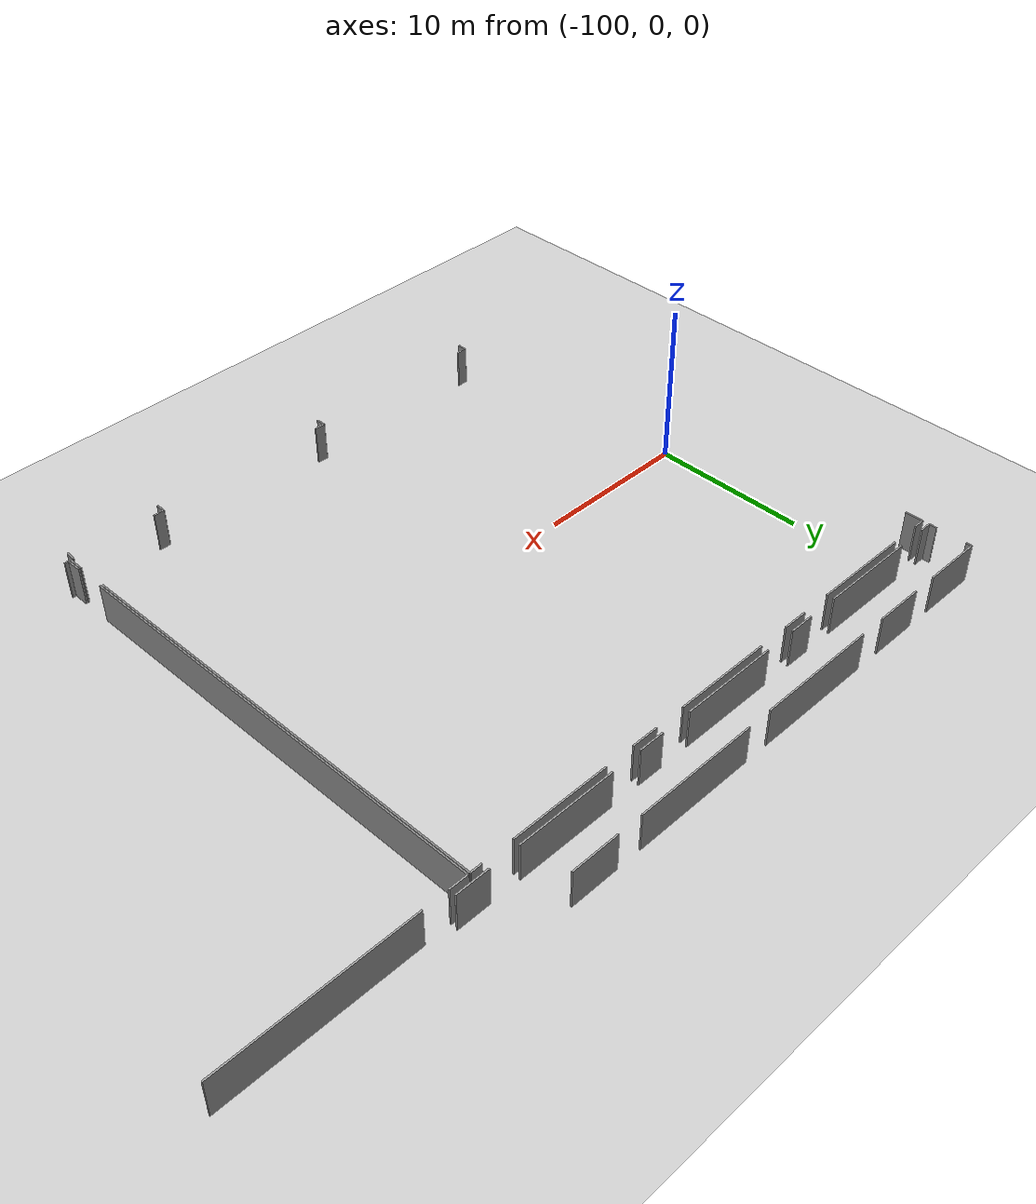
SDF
<sdf version="1.6">
 <world name="default">
  <model name="ground_plane">
   <static>1</static>
   <link name="link">
    <collision name="collision">
     <geometry><plane><normal>0 0 1</normal><size>100 100</size></plane></geometry>
     <surface><friction><ode><mu>100</mu><mu2>50</mu2></ode></friction></surface>
    </collision>
    <visual name="visual">
     <cast_shadows>0</cast_shadows>
     <geometry><plane><normal>0 0 1</normal><size>100 100</size></plane></geometry>
     <material>
      <script><uri>file://media/materials/scripts/gazebo.material</uri><name>Gazebo/Grey</name></script>
     </material>
    </visual>
   </link>
  </model>
  <model name="50010535_PLAN2">
   <static>1</static>
   <link name="Wall_1">
    <collision name="Wall_1_Collision">
     <geometry><box><size>2.14023875021 0.1 2.5</size></box></geometry>
     <pose>1.07011937511 0 1.25 0 0 0</pose>
    </collision>
    <visual name="Wall_1_Visual">
     <pose>1.07011937511 0 1.25 0 0 0</pose>
     <geometry><box><size>2.14023875021 0.1 2.5</size></box></geometry>
     <material>
      <script><uri>file://media/materials/scripts/gazebo.material</uri><name>Gazebo/Grey</name></script>
      <ambient>1 1 1 1</ambient>
     </material>
    </visual>
    <pose>37.1960127825 -12.5641569729 0 0 0 3.14159265359</pose>
   </link>
   <link name="Wall_2">
    <collision name="Wall_2_Collision">
     <geometry><box><size>6.37853154006 0.1 2.5</size></box></geometry>
     <pose>3.18926577003 0 1.25 0 0 0</pose>
    </collision>
    <visual name="Wall_2_Visual">
     <pose>3.18926577003 0 1.25 0 0 0</pose>
     <geometry><box><size>6.37853154006 0.1 2.5</size></box></geometry>
     <material>
      <script><uri>file://media/materials/scripts/gazebo.material</uri><name>Gazebo/Grey</name></script>
      <ambient>1 1 1 1</ambient>
     </material>
    </visual>
    <pose>33.1376403245 -12.5641569729 0 0 0 3.14159265359</pose>
   </link>
   <link name="Wall_3">
    <collision name="Wall_3_Collision">
     <geometry><box><size>1.67087031378 0.1 2.5</size></box></geometry>
     <pose>0.83543515689 0 1.25 0 0 0</pose>
    </collision>
    <visual name="Wall_3_Visual">
     <pose>0.83543515689 0 1.25 0 0 0</pose>
     <geometry><box><size>1.67087031378 0.1 2.5</size></box></geometry>
     <material>
      <script><uri>file://media/materials/scripts/gazebo.material</uri><name>Gazebo/Grey</name></script>
      <ambient>1 1 1 1</ambient>
     </material>
    </visual>
    <pose>24.7685495194 -12.5641569729 0 0 0 3.14159265359</pose>
   </link>
   <link name="Wall_4">
    <collision name="Wall_4_Collision">
     <geometry><box><size>6.34956131713 0.1 2.5</size></box></geometry>
     <pose>3.17478065856 0 1.25 0 0 0</pose>
    </collision>
    <visual name="Wall_4_Visual">
     <pose>3.17478065856 0 1.25 0 0 0</pose>
     <geometry><box><size>6.34956131713 0.1 2.5</size></box></geometry>
     <material>
      <script><uri>file://media/materials/scripts/gazebo.material</uri><name>Gazebo/Grey</name></script>
      <ambient>1 1 1 1</ambient>
     </material>
    </visual>
    <pose>21.0926348291 -12.5641569729 0 0 0 3.14159265359</pose>
   </link>
   <link name="Wall_5">
    <collision name="Wall_5_Collision">
     <geometry><box><size>1.65638520232 0.1 2.5</size></box></geometry>
     <pose>0.828192601158 0 1.25 0 0 0</pose>
    </collision>
    <visual name="Wall_5_Visual">
     <pose>0.828192601158 0 1.25 0 0 0</pose>
     <geometry><box><size>1.65638520232 0.1 2.5</size></box></geometry>
     <material>
      <script><uri>file://media/materials/scripts/gazebo.material</uri><name>Gazebo/Grey</name></script>
      <ambient>1 1 1 1</ambient>
     </material>
    </visual>
    <pose>12.7235440239 -12.5641569729 0 0 0 3.14159265359</pose>
   </link>
   <link name="Wall_6">
    <collision name="Wall_6_Collision">
     <geometry><box><size>6.36404642859 0.1 2.5</size></box></geometry>
     <pose>3.1820232143 0 1.25 0 0 0</pose>
    </collision>
    <visual name="Wall_6_Visual">
     <pose>3.1820232143 0 1.25 0 0 0</pose>
     <geometry><box><size>6.36404642859 0.1 2.5</size></box></geometry>
     <material>
      <script><uri>file://media/materials/scripts/gazebo.material</uri><name>Gazebo/Grey</name></script>
      <ambient>1 1 1 1</ambient>
     </material>
    </visual>
    <pose>9.09108466802 -12.5641569729 0 0 0 3.14159265359</pose>
   </link>
   <link name="Wall_7">
    <collision name="Wall_7_Collision">
     <geometry><box><size>0.75556374402 0.1 2.5</size></box></geometry>
     <pose>0.37778187201 0 1.25 0 0 0</pose>
    </collision>
    <visual name="Wall_7_Visual">
     <pose>0.37778187201 0 1.25 0 0 0</pose>
     <geometry><box><size>0.75556374402 0.1 2.5</size></box></geometry>
     <material>
      <script><uri>file://media/materials/scripts/gazebo.material</uri><name>Gazebo/Grey</name></script>
      <ambient>1 1 1 1</ambient>
     </material>
    </visual>
    <pose>0.765652497093 -12.5641569729 0 0 0 3.14159265359</pose>
   </link>
   <link name="Wall_8">
    <collision name="Wall_8_Collision">
     <geometry><box><size>0.503929404141 0.1 2.5</size></box></geometry>
     <pose>0.25196470207 0 1.25 0 0 0</pose>
    </collision>
    <visual name="Wall_8_Visual">
     <pose>0.25196470207 0 1.25 0 0 0</pose>
     <geometry><box><size>0.503929404141 0.1 2.5</size></box></geometry>
     <material>
      <script><uri>file://media/materials/scripts/gazebo.material</uri><name>Gazebo/Grey</name></script>
      <ambient>1 1 1 1</ambient>
     </material>
    </visual>
    <pose>0.0100887530733 -12.5641569729 0 0 0 1.57079632679</pose>
   </link>
   <link name="Wall_9">
    <collision name="Wall_9_Collision">
     <geometry><box><size>0.363144285687 0.1 2.5</size></box></geometry>
     <pose>0.181572142844 0 1.25 0 0 0</pose>
    </collision>
    <visual name="Wall_9_Visual">
     <pose>0.181572142844 0 1.25 0 0 0</pose>
     <geometry><box><size>0.363144285687 0.1 2.5</size></box></geometry>
     <material>
      <script><uri>file://media/materials/scripts/gazebo.material</uri><name>Gazebo/Grey</name></script>
      <ambient>1 1 1 1</ambient>
     </material>
    </visual>
    <pose>0.0100887530733 -10.1278628743 0 0 0 1.57079632679</pose>
   </link>
   <link name="Wall_10">
    <collision name="Wall_10_Collision">
     <geometry><box><size>3.84348455874 0.1 2.5</size></box></geometry>
     <pose>1.92174227937 0 1.25 0 0 0</pose>
    </collision>
    <visual name="Wall_10_Visual">
     <pose>1.92174227937 0 1.25 0 0 0</pose>
     <geometry><box><size>3.84348455874 0.1 2.5</size></box></geometry>
     <material>
      <script><uri>file://media/materials/scripts/gazebo.material</uri><name>Gazebo/Grey</name></script>
      <ambient>1 1 1 1</ambient>
     </material>
    </visual>
    <pose>0.0100887530733 -9.76471858859 0 0 0 0.0</pose>
   </link>
   <link name="Wall_11">
    <collision name="Wall_11_Collision">
     <geometry><box><size>3.16741104045 0.1 2.5</size></box></geometry>
     <pose>1.58370552023 0 1.25 0 0 0</pose>
    </collision>
    <visual name="Wall_11_Visual">
     <pose>1.58370552023 0 1.25 0 0 0</pose>
     <geometry><box><size>3.16741104045 0.1 2.5</size></box></geometry>
     <material>
      <script><uri>file://media/materials/scripts/gazebo.material</uri><name>Gazebo/Grey</name></script>
      <ambient>1 1 1 1</ambient>
     </material>
    </visual>
    <pose>5.44414020063 -9.76471858859 0 0 0 0.0</pose>
   </link>
   <link name="Wall_12">
    <collision name="Wall_12_Collision">
     <geometry><box><size>7.91573222874 0.1 2.5</size></box></geometry>
     <pose>3.95786611437 0 1.25 0 0 0</pose>
    </collision>
    <visual name="Wall_12_Visual">
     <pose>3.95786611437 0 1.25 0 0 0</pose>
     <geometry><box><size>7.91573222874 0.1 2.5</size></box></geometry>
     <material>
      <script><uri>file://media/materials/scripts/gazebo.material</uri><name>Gazebo/Grey</name></script>
      <ambient>1 1 1 1</ambient>
     </material>
    </visual>
    <pose>10.2885205492 -9.76471858859 0 0 0 0.0</pose>
   </link>
   <link name="Wall_13">
    <collision name="Wall_13_Collision">
     <geometry><box><size>8.03237549475 0.1 2.5</size></box></geometry>
     <pose>4.01618774737 0 1.25 0 0 0</pose>
    </collision>
    <visual name="Wall_13_Visual">
     <pose>4.01618774737 0 1.25 0 0 0</pose>
     <geometry><box><size>8.03237549475 0.1 2.5</size></box></geometry>
     <material>
      <script><uri>file://media/materials/scripts/gazebo.material</uri><name>Gazebo/Grey</name></script>
      <ambient>1 1 1 1</ambient>
     </material>
    </visual>
    <pose>19.8181991449 -9.76471858859 0 0 0 0.0</pose>
   </link>
   <link name="Wall_14">
    <collision name="Wall_14_Collision">
     <geometry><box><size>3.15724604995 0.1 2.5</size></box></geometry>
     <pose>1.57862302497 0 1.25 0 0 0</pose>
    </collision>
    <visual name="Wall_14_Visual">
     <pose>1.57862302497 0 1.25 0 0 0</pose>
     <geometry><box><size>3.15724604995 0.1 2.5</size></box></geometry>
     <material>
      <script><uri>file://media/materials/scripts/gazebo.material</uri><name>Gazebo/Grey</name></script>
      <ambient>1 1 1 1</ambient>
     </material>
    </visual>
    <pose>29.4645210066 -9.76471858859 0 0 0 0.0</pose>
   </link>
   <link name="Wall_81">
    <collision name="Wall_81_Collision">
     <geometry><box><size>0.275979492132 0.1 2.5</size></box></geometry>
     <pose>0.137989746066 0 1.25 0 0 0</pose>
    </collision>
    <visual name="Wall_81_Visual">
     <pose>0.137989746066 0 1.25 0 0 0</pose>
     <geometry><box><size>0.275979492132 0.1 2.5</size></box></geometry>
     <material>
      <script><uri>file://media/materials/scripts/gazebo.material</uri><name>Gazebo/Grey</name></script>
      <ambient>1 1 1 1</ambient>
     </material>
    </visual>
    <pose>36.2615960306 -44.5630388239 0 0 0 3.14159265359</pose>
   </link>
   <link name="Wall_82">
    <collision name="Wall_82_Collision">
     <geometry><box><size>1.01700729973 0.1 2.5</size></box></geometry>
     <pose>0.508503649867 0 1.25 0 0 0</pose>
    </collision>
    <visual name="Wall_82_Visual">
     <pose>0.508503649867 0 1.25 0 0 0</pose>
     <geometry><box><size>1.01700729973 0.1 2.5</size></box></geometry>
     <material>
      <script><uri>file://media/materials/scripts/gazebo.material</uri><name>Gazebo/Grey</name></script>
      <ambient>1 1 1 1</ambient>
     </material>
    </visual>
    <pose>35.9856165384 -44.5630388239 0 0 0 1.57079632679</pose>
   </link>
   <link name="Wall_83">
    <collision name="Wall_83_Collision">
     <geometry><box><size>28.5727718023 0.1 2.5</size></box></geometry>
     <pose>14.2863859012 0 1.25 0 0 0</pose>
    </collision>
    <visual name="Wall_83_Visual">
     <pose>14.2863859012 0 1.25 0 0 0</pose>
     <geometry><box><size>28.5727718023 0.1 2.5</size></box></geometry>
     <material>
      <script><uri>file://media/materials/scripts/gazebo.material</uri><name>Gazebo/Grey</name></script>
      <ambient>1 1 1 1</ambient>
     </material>
    </visual>
    <pose>35.9856165384 -41.569449121 0 0 0 1.57079632679</pose>
   </link>
   <link name="Wall_84">
    <collision name="Wall_84_Collision">
     <geometry><box><size>1.19362400971 0.1 2.5</size></box></geometry>
     <pose>0.596812004854 0 1.25 0 0 0</pose>
    </collision>
    <visual name="Wall_84_Visual">
     <pose>0.596812004854 0 1.25 0 0 0</pose>
     <geometry><box><size>1.19362400971 0.1 2.5</size></box></geometry>
     <material>
      <script><uri>file://media/materials/scripts/gazebo.material</uri><name>Gazebo/Grey</name></script>
      <ambient>1 1 1 1</ambient>
     </material>
    </visual>
    <pose>35.9856165384 -12.9966773187 0 0 0 0.0</pose>
   </link>
   <link name="Wall_85">
    <collision name="Wall_85_Collision">
     <geometry><box><size>12.0452596202 0.1 2.5</size></box></geometry>
     <pose>6.02262981011 0 1.25 0 0 0</pose>
    </collision>
    <visual name="Wall_85_Visual">
     <pose>6.02262981011 0 1.25 0 0 0</pose>
     <geometry><box><size>12.0452596202 0.1 2.5</size></box></geometry>
     <material>
      <script><uri>file://media/materials/scripts/gazebo.material</uri><name>Gazebo/Grey</name></script>
      <ambient>1 1 1 1</ambient>
     </material>
    </visual>
    <pose>38.7868337961 -12.9966773187 0 0 0 0.0</pose>
   </link>
   <link name="Wall_90">
    <collision name="Wall_90_Collision">
     <geometry><box><size>0.694268851293 0.1 2.5</size></box></geometry>
     <pose>0.347134425646 0 1.25 0 0 0</pose>
    </collision>
    <visual name="Wall_90_Visual">
     <pose>0.347134425646 0 1.25 0 0 0</pose>
     <geometry><box><size>0.694268851293 0.1 2.5</size></box></geometry>
     <material>
      <script><uri>file://media/materials/scripts/gazebo.material</uri><name>Gazebo/Grey</name></script>
      <ambient>1 1 1 1</ambient>
     </material>
    </visual>
    <pose>30.2716212525 -44.5561774553 0 0 0 3.14159265359</pose>
   </link>
   <link name="Wall_91">
    <collision name="Wall_91_Collision">
     <geometry><box><size>0.6093911806 0.1 2.5</size></box></geometry>
     <pose>0.3046955903 0 1.25 0 0 0</pose>
    </collision>
    <visual name="Wall_91_Visual">
     <pose>0.3046955903 0 1.25 0 0 0</pose>
     <geometry><box><size>0.6093911806 0.1 2.5</size></box></geometry>
     <material>
      <script><uri>file://media/materials/scripts/gazebo.material</uri><name>Gazebo/Grey</name></script>
      <ambient>1 1 1 1</ambient>
     </material>
    </visual>
    <pose>29.5773524012 -44.5561774553 0 0 0 -1.57079632679</pose>
   </link>
   <link name="Wall_98">
    <collision name="Wall_98_Collision">
     <geometry><box><size>0.695539475105 0.1 2.5</size></box></geometry>
     <pose>0.347769737553 0 1.25 0 0 0</pose>
    </collision>
    <visual name="Wall_98_Visual">
     <pose>0.347769737553 0 1.25 0 0 0</pose>
     <geometry><box><size>0.695539475105 0.1 2.5</size></box></geometry>
     <material>
      <script><uri>file://media/materials/scripts/gazebo.material</uri><name>Gazebo/Grey</name></script>
      <ambient>1 1 1 1</ambient>
     </material>
    </visual>
    <pose>18.2721040895 -44.5777780601 0 0 0 3.14159265359</pose>
   </link>
   <link name="Wall_99">
    <collision name="Wall_99_Collision">
     <geometry><box><size>0.610153554888 0.1 2.5</size></box></geometry>
     <pose>0.305076777444 0 1.25 0 0 0</pose>
    </collision>
    <visual name="Wall_99_Visual">
     <pose>0.305076777444 0 1.25 0 0 0</pose>
     <geometry><box><size>0.610153554888 0.1 2.5</size></box></geometry>
     <material>
      <script><uri>file://media/materials/scripts/gazebo.material</uri><name>Gazebo/Grey</name></script>
      <ambient>1 1 1 1</ambient>
     </material>
    </visual>
    <pose>17.5765646144 -44.5777780601 0 0 0 -1.57079632679</pose>
   </link>
   <link name="Wall_106">
    <collision name="Wall_106_Collision">
     <geometry><box><size>0.669618749325 0.1 2.5</size></box></geometry>
     <pose>0.334809374662 0 1.25 0 0 0</pose>
    </collision>
    <visual name="Wall_106_Visual">
     <pose>0.334809374662 0 1.25 0 0 0</pose>
     <geometry><box><size>0.669618749325 0.1 2.5</size></box></geometry>
     <material>
      <script><uri>file://media/materials/scripts/gazebo.material</uri><name>Gazebo/Grey</name></script>
      <ambient>1 1 1 1</ambient>
     </material>
    </visual>
    <pose>6.24132958076 -44.5655800715 0 0 0 3.14159265359</pose>
   </link>
   <link name="Wall_107">
    <collision name="Wall_107_Collision">
     <geometry><box><size>0.606595808212 0.1 2.5</size></box></geometry>
     <pose>0.303297904106 0 1.25 0 0 0</pose>
    </collision>
    <visual name="Wall_107_Visual">
     <pose>0.303297904106 0 1.25 0 0 0</pose>
     <geometry><box><size>0.606595808212 0.1 2.5</size></box></geometry>
     <material>
      <script><uri>file://media/materials/scripts/gazebo.material</uri><name>Gazebo/Grey</name></script>
      <ambient>1 1 1 1</ambient>
     </material>
    </visual>
    <pose>5.57171083143 -44.5655800715 0 0 0 -1.57079632679</pose>
   </link>
   <link name="Wall_110">
    <collision name="Wall_110_Collision">
     <geometry><box><size>1.13365056575 0.1 2.5</size></box></geometry>
     <pose>0.566825282873 0 1.25 0 0 0</pose>
    </collision>
    <visual name="Wall_110_Visual">
     <pose>0.566825282873 0 1.25 0 0 0</pose>
     <geometry><box><size>1.13365056575 0.1 2.5</size></box></geometry>
     <material>
      <script><uri>file://media/materials/scripts/gazebo.material</uri><name>Gazebo/Grey</name></script>
      <ambient>1 1 1 1</ambient>
     </material>
    </visual>
    <pose>0.0126300006988 -14.1379516274 0 0 0 1.57079632679</pose>
   </link>
   <link name="Wall_111">
    <collision name="Wall_111_Collision">
     <geometry><box><size>0.740672032935 0.1 2.5</size></box></geometry>
     <pose>0.370336016467 0 1.25 0 0 0</pose>
    </collision>
    <visual name="Wall_111_Visual">
     <pose>0.370336016467 0 1.25 0 0 0</pose>
     <geometry><box><size>0.740672032935 0.1 2.5</size></box></geometry>
     <material>
      <script><uri>file://media/materials/scripts/gazebo.material</uri><name>Gazebo/Grey</name></script>
      <ambient>1 1 1 1</ambient>
     </material>
    </visual>
    <pose>0.0126300006988 -13.0043010616 0 0 0 0.0</pose>
   </link>
   <link name="Wall_112">
    <collision name="Wall_112_Collision">
     <geometry><box><size>6.36404642859 0.1 2.5</size></box></geometry>
     <pose>3.1820232143 0 1.25 0 0 0</pose>
    </collision>
    <visual name="Wall_112_Visual">
     <pose>3.1820232143 0 1.25 0 0 0</pose>
     <geometry><box><size>6.36404642859 0.1 2.5</size></box></geometry>
     <material>
      <script><uri>file://media/materials/scripts/gazebo.material</uri><name>Gazebo/Grey</name></script>
      <ambient>1 1 1 1</ambient>
     </material>
    </visual>
    <pose>2.71255312796 -13.0043010616 0 0 0 0.0</pose>
   </link>
   <link name="Wall_113">
    <collision name="Wall_113_Collision">
     <geometry><box><size>1.65638520232 0.1 2.5</size></box></geometry>
     <pose>0.828192601158 0 1.25 0 0 0</pose>
    </collision>
    <visual name="Wall_113_Visual">
     <pose>0.828192601158 0 1.25 0 0 0</pose>
     <geometry><box><size>1.65638520232 0.1 2.5</size></box></geometry>
     <material>
      <script><uri>file://media/materials/scripts/gazebo.material</uri><name>Gazebo/Grey</name></script>
      <ambient>1 1 1 1</ambient>
     </material>
    </visual>
    <pose>11.0671588216 -13.0043010616 0 0 0 0.0</pose>
   </link>
   <link name="Wall_114">
    <collision name="Wall_114_Collision">
     <geometry><box><size>6.3205910942 0.1 2.5</size></box></geometry>
     <pose>3.1602955471 0 1.25 0 0 0</pose>
    </collision>
    <visual name="Wall_114_Visual">
     <pose>3.1602955471 0 1.25 0 0 0</pose>
     <geometry><box><size>6.3205910942 0.1 2.5</size></box></geometry>
     <material>
      <script><uri>file://media/materials/scripts/gazebo.material</uri><name>Gazebo/Grey</name></script>
      <ambient>1 1 1 1</ambient>
     </material>
    </visual>
    <pose>14.7430735119 -13.0043010616 0 0 0 0.0</pose>
   </link>
   <link name="Wall_115">
    <collision name="Wall_115_Collision">
     <geometry><box><size>1.7290648844 0.1 2.5</size></box></geometry>
     <pose>0.864532442202 0 1.25 0 0 0</pose>
    </collision>
    <visual name="Wall_115_Visual">
     <pose>0.864532442202 0 1.25 0 0 0</pose>
     <geometry><box><size>1.7290648844 0.1 2.5</size></box></geometry>
     <material>
      <script><uri>file://media/materials/scripts/gazebo.material</uri><name>Gazebo/Grey</name></script>
      <ambient>1 1 1 1</ambient>
     </material>
    </visual>
    <pose>23.0687089827 -13.0043010616 0 0 0 0.0</pose>
   </link>
   <link name="Wall_116">
    <collision name="Wall_116_Collision">
     <geometry><box><size>6.35006956665 0.1 2.5</size></box></geometry>
     <pose>3.17503478333 0 1.25 0 0 0</pose>
    </collision>
    <visual name="Wall_116_Visual">
     <pose>3.17503478333 0 1.25 0 0 0</pose>
     <geometry><box><size>6.35006956665 0.1 2.5</size></box></geometry>
     <material>
      <script><uri>file://media/materials/scripts/gazebo.material</uri><name>Gazebo/Grey</name></script>
      <ambient>1 1 1 1</ambient>
     </material>
    </visual>
    <pose>26.7428447997 -13.0043010616 0 0 0 0.0</pose>
   </link>
   <link name="Wall_117">
    <collision name="Wall_117_Collision">
     <geometry><box><size>0.749922174291 0.1 2.5</size></box></geometry>
     <pose>0.374961087146 0 1.25 0 0 0</pose>
    </collision>
    <visual name="Wall_117_Visual">
     <pose>0.374961087146 0 1.25 0 0 0</pose>
     <geometry><box><size>0.749922174291 0.1 2.5</size></box></geometry>
     <material>
      <script><uri>file://media/materials/scripts/gazebo.material</uri><name>Gazebo/Grey</name></script>
      <ambient>1 1 1 1</ambient>
     </material>
    </visual>
    <pose>35.1035494876 -13.0043010616 0 0 0 0.0</pose>
   </link>
   <link name="Wall_118">
    <collision name="Wall_118_Collision">
     <geometry><box><size>28.5229633489 0.1 2.5</size></box></geometry>
     <pose>14.2614816744 0 1.25 0 0 0</pose>
    </collision>
    <visual name="Wall_118_Visual">
     <pose>14.2614816744 0 1.25 0 0 0</pose>
     <geometry><box><size>28.5229633489 0.1 2.5</size></box></geometry>
     <material>
      <script><uri>file://media/materials/scripts/gazebo.material</uri><name>Gazebo/Grey</name></script>
      <ambient>1 1 1 1</ambient>
     </material>
    </visual>
    <pose>35.8534716619 -13.0043010616 0 0 0 -1.57079632679</pose>
   </link>
   <link name="Wall_119">
    <collision name="Wall_119_Collision">
     <geometry><box><size>1.03174653596 0.1 2.5</size></box></geometry>
     <pose>0.515873267981 0 1.25 0 0 0</pose>
    </collision>
    <visual name="Wall_119_Visual">
     <pose>0.515873267981 0 1.25 0 0 0</pose>
     <geometry><box><size>1.03174653596 0.1 2.5</size></box></geometry>
     <material>
      <script><uri>file://media/materials/scripts/gazebo.material</uri><name>Gazebo/Grey</name></script>
      <ambient>1 1 1 1</ambient>
     </material>
    </visual>
    <pose>35.8534716619 -43.5460315242 0 0 0 -1.57079632679</pose>
   </link>
   <link name="Wall_120">
    <collision name="Wall_120_Collision">
     <geometry><box><size>0.187544074764 0.1 2.5</size></box></geometry>
     <pose>0.0937720373818 0 1.25 0 0 0</pose>
    </collision>
    <visual name="Wall_120_Visual">
     <pose>0.0937720373818 0 1.25 0 0 0</pose>
     <geometry><box><size>0.187544074764 0.1 2.5</size></box></geometry>
     <material>
      <script><uri>file://media/materials/scripts/gazebo.material</uri><name>Gazebo/Grey</name></script>
      <ambient>1 1 1 1</ambient>
     </material>
    </visual>
    <pose>35.8534716619 -44.5777780601 0 0 0 3.14159265359</pose>
   </link>
   <link name="Wall_121">
    <collision name="Wall_121_Collision">
     <geometry><box><size>0.633919403006 0.1 2.5</size></box></geometry>
     <pose>0.316959701503 0 1.25 0 0 0</pose>
    </collision>
    <visual name="Wall_121_Visual">
     <pose>0.316959701503 0 1.25 0 0 0</pose>
     <geometry><box><size>0.633919403006 0.1 2.5</size></box></geometry>
     <material>
      <script><uri>file://media/materials/scripts/gazebo.material</uri><name>Gazebo/Grey</name></script>
      <ambient>1 1 1 1</ambient>
     </material>
    </visual>
    <pose>35.6659275871 -44.5777780601 0 0 0 -1.65347148241</pose>
   </link>
   <pose>-102.6 29.7873404573 0 0 0 0</pose>
  </model>
 </world>
</sdf>
